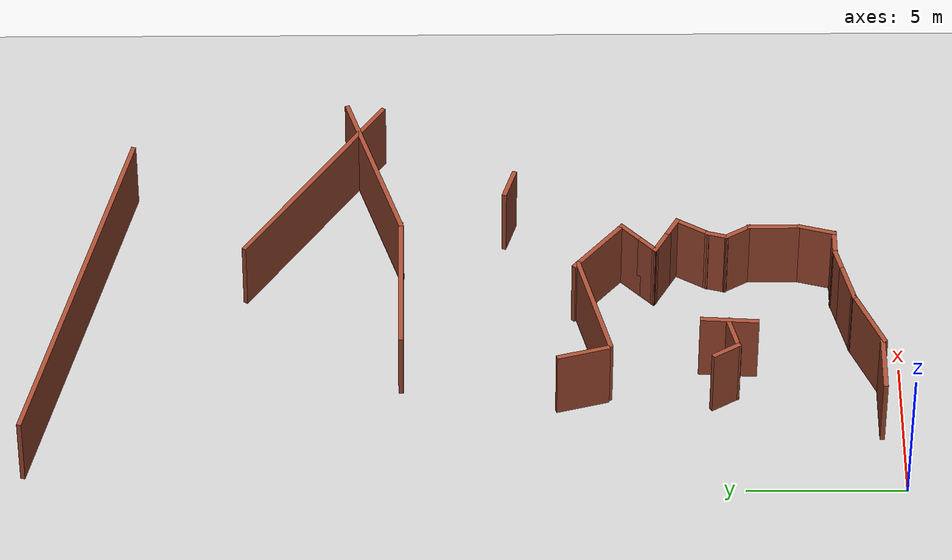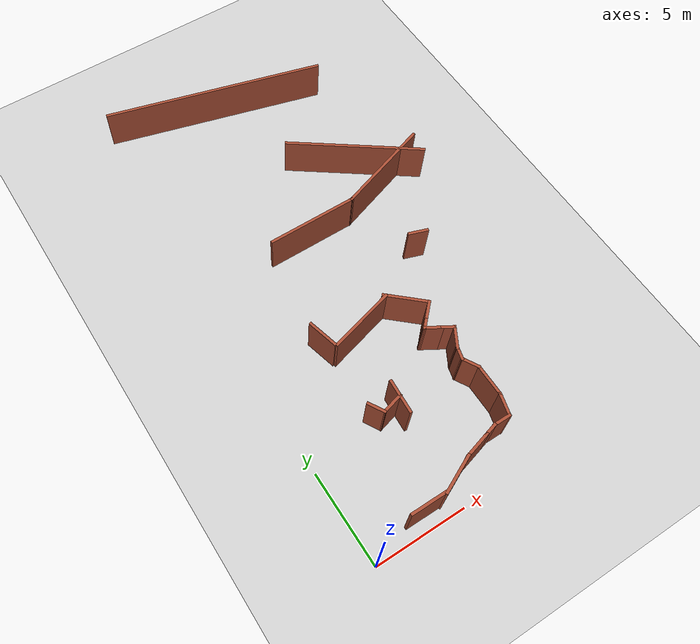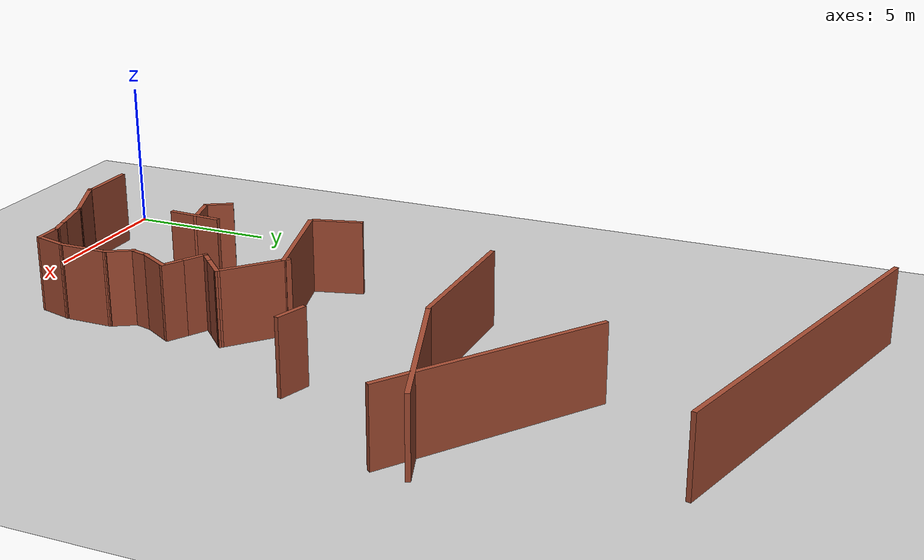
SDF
<sdf version="1.5">
 <world name="default">
  <model name="ground_plane">
   <static>1</static>
   <link name="link">
    <collision name="collision">
     <geometry><plane><normal>0 0 1</normal><size>100 100</size></plane></geometry>
     <surface><friction><ode><mu>100</mu><mu2>50</mu2></ode></friction></surface>
    </collision>
    <visual name="visual">
     <cast_shadows>0</cast_shadows>
     <geometry><plane><normal>0 0 1</normal><size>100 100</size></plane></geometry>
     <material>
      <script><uri>file://media/materials/scripts/gazebo.material</uri><name>Gazebo/Grey</name></script>
     </material>
    </visual>
   </link>
  </model>
  <model name="Untitled1111">
   <link name="Wall_109">
    <pose>9.25161 15.8373 0 0 0 -2.82454</pose>
    <visual name="Wall_109_Visual">
     <pose>0 0 1.25 0 -0 0</pose>
     <geometry><box><size>5.59694 0.15 2.5</size></box></geometry>
     <material>
      <script><uri>file://media/materials/scripts/gazebo.material</uri><name>Gazebo/Bricks</name></script>
      <ambient>1 1 1 1</ambient>
      <shader type="pixel"/>
     </material>
     <meta><layer>0</layer></meta>
    </visual>
    <collision name="Wall_109_Collision">
     <pose>0 0 1.25 0 -0 0</pose>
     <geometry><box><size>5.59694 0.15 2.5</size></box></geometry>
     <surface>
      <friction>
       <ode><mu>1</mu><mu2>1</mu2><fdir1>0 0 0</fdir1><slip1>0</slip1><slip2>0</slip2></ode>
       <torsional>
        <coefficient>1</coefficient>
        <patch_radius>0</patch_radius>
        <surface_radius>0</surface_radius>
        <use_patch_radius>1</use_patch_radius>
        <ode><slip>0</slip></ode>
       </torsional>
      </friction>
      <bounce><restitution_coefficient>0</restitution_coefficient><threshold>1e+06</threshold></bounce>
      <contact>
       <collide_without_contact>0</collide_without_contact>
       <collide_without_contact_bitmask>1</collide_without_contact_bitmask>
       <collide_bitmask>1</collide_bitmask>
       <ode>
        <soft_cfm>0</soft_cfm>
        <soft_erp>0.2</soft_erp>
        <kp>1e+13</kp>
        <kd>1</kd>
        <max_vel>0.01</max_vel>
        <min_depth>0</min_depth>
       </ode>
       <bullet>
        <split_impulse>1</split_impulse>
        <split_impulse_penetration_threshold>-0.01</split_impulse_penetration_threshold>
        <soft_cfm>0</soft_cfm>
        <soft_erp>0.2</soft_erp>
        <kp>1e+13</kp>
        <kd>1</kd>
       </bullet>
      </contact>
     </surface>
    </collision>
   </link>
   <link name="Wall_110">
    <pose>4.23888 14.9882 0 0 -0 3.14159</pose>
    <visual name="Wall_110_Visual">
     <pose>0 0 1.25 0 -0 0</pose>
     <geometry><box><size>5 0.15 2.5</size></box></geometry>
     <material>
      <script><uri>file://media/materials/scripts/gazebo.material</uri><name>Gazebo/Bricks</name></script>
      <ambient>1 1 1 1</ambient>
      <shader type="pixel"/>
     </material>
     <meta><layer>0</layer></meta>
    </visual>
    <collision name="Wall_110_Collision">
     <pose>0 0 1.25 0 -0 0</pose>
     <geometry><box><size>5 0.15 2.5</size></box></geometry>
     <surface>
      <friction>
       <ode><mu>1</mu><mu2>1</mu2><fdir1>0 0 0</fdir1><slip1>0</slip1><slip2>0</slip2></ode>
       <torsional>
        <coefficient>1</coefficient>
        <patch_radius>0</patch_radius>
        <surface_radius>0</surface_radius>
        <use_patch_radius>1</use_patch_radius>
        <ode><slip>0</slip></ode>
       </torsional>
      </friction>
      <bounce><restitution_coefficient>0</restitution_coefficient><threshold>1e+06</threshold></bounce>
      <contact>
       <collide_without_contact>0</collide_without_contact>
       <collide_without_contact_bitmask>1</collide_without_contact_bitmask>
       <collide_bitmask>1</collide_bitmask>
       <ode>
        <soft_cfm>0</soft_cfm>
        <soft_erp>0.2</soft_erp>
        <kp>1e+13</kp>
        <kd>1</kd>
        <max_vel>0.01</max_vel>
        <min_depth>0</min_depth>
       </ode>
       <bullet>
        <split_impulse>1</split_impulse>
        <split_impulse_penetration_threshold>-0.01</split_impulse_penetration_threshold>
        <soft_cfm>0</soft_cfm>
        <soft_erp>0.2</soft_erp>
        <kp>1e+13</kp>
        <kd>1</kd>
       </bullet>
      </contact>
     </surface>
    </collision>
   </link>
   <link name="Wall_162">
    <pose>4.1854 25.104 0 0 0 -0.261799</pose>
    <visual name="Wall_162_Visual">
     <pose>0 0 1.25 0 -0 0</pose>
     <geometry><box><size>12.25 0.15 2.5</size></box></geometry>
     <material>
      <script><uri>file://media/materials/scripts/gazebo.material</uri><name>Gazebo/Bricks</name></script>
      <ambient>1 1 1 1</ambient>
      <shader type="pixel"/>
     </material>
     <meta><layer>0</layer></meta>
    </visual>
    <collision name="Wall_162_Collision">
     <pose>0 0 1.25 0 -0 0</pose>
     <geometry><box><size>12.25 0.15 2.5</size></box></geometry>
     <surface>
      <friction>
       <ode><mu>1</mu><mu2>1</mu2><fdir1>0 0 0</fdir1><slip1>0</slip1><slip2>0</slip2></ode>
       <torsional>
        <coefficient>1</coefficient>
        <patch_radius>0</patch_radius>
        <surface_radius>0</surface_radius>
        <use_patch_radius>1</use_patch_radius>
        <ode><slip>0</slip></ode>
       </torsional>
      </friction>
      <bounce><restitution_coefficient>0</restitution_coefficient><threshold>1e+06</threshold></bounce>
      <contact>
       <collide_without_contact>0</collide_without_contact>
       <collide_without_contact_bitmask>1</collide_without_contact_bitmask>
       <collide_bitmask>1</collide_bitmask>
       <ode>
        <soft_cfm>0</soft_cfm>
        <soft_erp>0.2</soft_erp>
        <kp>1e+13</kp>
        <kd>1</kd>
        <max_vel>0.01</max_vel>
        <min_depth>0</min_depth>
       </ode>
       <bullet>
        <split_impulse>1</split_impulse>
        <split_impulse_penetration_threshold>-0.01</split_impulse_penetration_threshold>
        <soft_cfm>0</soft_cfm>
        <soft_erp>0.2</soft_erp>
        <kp>1e+13</kp>
        <kd>1</kd>
       </bullet>
      </contact>
     </surface>
    </collision>
   </link>
   <link name="Wall_17">
    <pose>1.24322 4.87944 0 0 0 -1.0472</pose>
    <visual name="Wall_17_Visual">
     <pose>0 0 1.25 0 -0 0</pose>
     <geometry><box><size>1 0.15 2.5</size></box></geometry>
     <material>
      <script><uri>file://media/materials/scripts/gazebo.material</uri><name>Gazebo/Bricks</name></script>
      <ambient>1 1 1 1</ambient>
      <shader type="pixel"/>
     </material>
     <meta><layer>0</layer></meta>
    </visual>
    <collision name="Wall_17_Collision">
     <pose>0 0 1.25 0 -0 0</pose>
     <geometry><box><size>1 0.15 2.5</size></box></geometry>
     <surface>
      <friction>
       <ode><mu>1</mu><mu2>1</mu2><fdir1>0 0 0</fdir1><slip1>0</slip1><slip2>0</slip2></ode>
       <torsional>
        <coefficient>1</coefficient>
        <patch_radius>0</patch_radius>
        <surface_radius>0</surface_radius>
        <use_patch_radius>1</use_patch_radius>
        <ode><slip>0</slip></ode>
       </torsional>
      </friction>
      <bounce><restitution_coefficient>0</restitution_coefficient><threshold>1e+06</threshold></bounce>
      <contact>
       <collide_without_contact>0</collide_without_contact>
       <collide_without_contact_bitmask>1</collide_without_contact_bitmask>
       <collide_bitmask>1</collide_bitmask>
       <ode>
        <soft_cfm>0</soft_cfm>
        <soft_erp>0.2</soft_erp>
        <kp>1e+13</kp>
        <kd>1</kd>
        <max_vel>0.01</max_vel>
        <min_depth>0</min_depth>
       </ode>
       <bullet>
        <split_impulse>1</split_impulse>
        <split_impulse_penetration_threshold>-0.01</split_impulse_penetration_threshold>
        <soft_cfm>0</soft_cfm>
        <soft_erp>0.2</soft_erp>
        <kp>1e+13</kp>
        <kd>1</kd>
       </bullet>
      </contact>
     </surface>
    </collision>
   </link>
   <link name="Wall_18">
    <pose>1.98698 4.65373 0 0 -0 0.261799</pose>
    <visual name="Wall_18_Visual">
     <pose>0 0 1.25 0 -0 0</pose>
     <geometry><box><size>1.25 0.15 2.5</size></box></geometry>
     <material>
      <script><uri>file://media/materials/scripts/gazebo.material</uri><name>Gazebo/Bricks</name></script>
      <ambient>1 1 1 1</ambient>
      <shader type="pixel"/>
     </material>
     <meta><layer>0</layer></meta>
    </visual>
    <collision name="Wall_18_Collision">
     <pose>0 0 1.25 0 -0 0</pose>
     <geometry><box><size>1.25 0.15 2.5</size></box></geometry>
     <surface>
      <friction>
       <ode><mu>1</mu><mu2>1</mu2><fdir1>0 0 0</fdir1><slip1>0</slip1><slip2>0</slip2></ode>
       <torsional>
        <coefficient>1</coefficient>
        <patch_radius>0</patch_radius>
        <surface_radius>0</surface_radius>
        <use_patch_radius>1</use_patch_radius>
        <ode><slip>0</slip></ode>
       </torsional>
      </friction>
      <bounce><restitution_coefficient>0</restitution_coefficient><threshold>1e+06</threshold></bounce>
      <contact>
       <collide_without_contact>0</collide_without_contact>
       <collide_without_contact_bitmask>1</collide_without_contact_bitmask>
       <collide_bitmask>1</collide_bitmask>
       <ode>
        <soft_cfm>0</soft_cfm>
        <soft_erp>0.2</soft_erp>
        <kp>1e+13</kp>
        <kd>1</kd>
        <max_vel>0.01</max_vel>
        <min_depth>0</min_depth>
       </ode>
       <bullet>
        <split_impulse>1</split_impulse>
        <split_impulse_penetration_threshold>-0.01</split_impulse_penetration_threshold>
        <soft_cfm>0</soft_cfm>
        <soft_erp>0.2</soft_erp>
        <kp>1e+13</kp>
        <kd>1</kd>
       </bullet>
      </contact>
     </surface>
    </collision>
   </link>
   <link name="Wall_183">
    <pose>8.70454 17.7279 0 0 0 -0.618316</pose>
    <visual name="Wall_183_Visual">
     <pose>0 0 1.25 0 -0 0</pose>
     <geometry><box><size>7.56963 0.15 2.5</size></box></geometry>
     <material>
      <script><uri>file://media/materials/scripts/gazebo.material</uri><name>Gazebo/Bricks</name></script>
      <ambient>1 1 1 1</ambient>
      <shader type="pixel"/>
     </material>
     <meta><layer>0</layer></meta>
    </visual>
    <collision name="Wall_183_Collision">
     <pose>0 0 1.25 0 -0 0</pose>
     <geometry><box><size>7.56963 0.15 2.5</size></box></geometry>
     <surface>
      <friction>
       <ode><mu>1</mu><mu2>1</mu2><fdir1>0 0 0</fdir1><slip1>0</slip1><slip2>0</slip2></ode>
       <torsional>
        <coefficient>1</coefficient>
        <patch_radius>0</patch_radius>
        <surface_radius>0</surface_radius>
        <use_patch_radius>1</use_patch_radius>
        <ode><slip>0</slip></ode>
       </torsional>
      </friction>
      <bounce><restitution_coefficient>0</restitution_coefficient><threshold>1e+06</threshold></bounce>
      <contact>
       <collide_without_contact>0</collide_without_contact>
       <collide_without_contact_bitmask>1</collide_without_contact_bitmask>
       <collide_bitmask>1</collide_bitmask>
       <ode>
        <soft_cfm>0</soft_cfm>
        <soft_erp>0.2</soft_erp>
        <kp>1e+13</kp>
        <kd>1</kd>
        <max_vel>0.01</max_vel>
        <min_depth>0</min_depth>
       </ode>
       <bullet>
        <split_impulse>1</split_impulse>
        <split_impulse_penetration_threshold>-0.01</split_impulse_penetration_threshold>
        <soft_cfm>0</soft_cfm>
        <soft_erp>0.2</soft_erp>
        <kp>1e+13</kp>
        <kd>1</kd>
       </bullet>
      </contact>
     </surface>
    </collision>
   </link>
   <link name="Wall_21">
    <pose>2.50556 4.7383 0 0 0 -1.63384</pose>
    <visual name="Wall_21_Visual">
     <pose>0 0 1.25 0 -0 0</pose>
     <geometry><box><size>1.84484 0.15 2.5</size></box></geometry>
     <material>
      <script><uri>file://media/materials/scripts/gazebo.material</uri><name>Gazebo/Bricks</name></script>
      <ambient>1 1 1 1</ambient>
      <shader type="pixel"/>
     </material>
     <meta><layer>0</layer></meta>
    </visual>
    <collision name="Wall_21_Collision">
     <pose>0 0 1.25 0 -0 0</pose>
     <geometry><box><size>1.84484 0.15 2.5</size></box></geometry>
     <surface>
      <friction>
       <ode><mu>1</mu><mu2>1</mu2><fdir1>0 0 0</fdir1><slip1>0</slip1><slip2>0</slip2></ode>
       <torsional>
        <coefficient>1</coefficient>
        <patch_radius>0</patch_radius>
        <surface_radius>0</surface_radius>
        <use_patch_radius>1</use_patch_radius>
        <ode><slip>0</slip></ode>
       </torsional>
      </friction>
      <bounce><restitution_coefficient>0</restitution_coefficient><threshold>1e+06</threshold></bounce>
      <contact>
       <collide_without_contact>0</collide_without_contact>
       <collide_without_contact_bitmask>1</collide_without_contact_bitmask>
       <collide_bitmask>1</collide_bitmask>
       <ode>
        <soft_cfm>0</soft_cfm>
        <soft_erp>0.2</soft_erp>
        <kp>1e+13</kp>
        <kd>1</kd>
        <max_vel>0.01</max_vel>
        <min_depth>0</min_depth>
       </ode>
       <bullet>
        <split_impulse>1</split_impulse>
        <split_impulse_penetration_threshold>-0.01</split_impulse_penetration_threshold>
        <soft_cfm>0</soft_cfm>
        <soft_erp>0.2</soft_erp>
        <kp>1e+13</kp>
        <kd>1</kd>
       </bullet>
      </contact>
     </surface>
    </collision>
   </link>
   <link name="Wall_35">
    <pose>0.702466 0.01763 0 0 -0 0</pose>
    <visual name="Wall_35_Visual">
     <pose>0 0 1.25 0 -0 0</pose>
     <geometry><box><size>2 0.15 2.5</size></box></geometry>
     <material>
      <script><uri>file://media/materials/scripts/gazebo.material</uri><name>Gazebo/Bricks</name></script>
      <ambient>1 1 1 1</ambient>
      <shader type="pixel"/>
     </material>
     <meta><layer>0</layer></meta>
    </visual>
    <collision name="Wall_35_Collision">
     <pose>0 0 1.25 0 -0 0</pose>
     <geometry><box><size>2 0.15 2.5</size></box></geometry>
     <surface>
      <friction>
       <ode><mu>1</mu><mu2>1</mu2><fdir1>0 0 0</fdir1><slip1>0</slip1><slip2>0</slip2></ode>
       <torsional>
        <coefficient>1</coefficient>
        <patch_radius>0</patch_radius>
        <surface_radius>0</surface_radius>
        <use_patch_radius>1</use_patch_radius>
        <ode><slip>0</slip></ode>
       </torsional>
      </friction>
      <bounce><restitution_coefficient>0</restitution_coefficient><threshold>1e+06</threshold></bounce>
      <contact>
       <collide_without_contact>0</collide_without_contact>
       <collide_without_contact_bitmask>1</collide_without_contact_bitmask>
       <collide_bitmask>1</collide_bitmask>
       <ode>
        <soft_cfm>0</soft_cfm>
        <soft_erp>0.2</soft_erp>
        <kp>1e+13</kp>
        <kd>1</kd>
        <max_vel>0.01</max_vel>
        <min_depth>0</min_depth>
       </ode>
       <bullet>
        <split_impulse>1</split_impulse>
        <split_impulse_penetration_threshold>-0.01</split_impulse_penetration_threshold>
        <soft_cfm>0</soft_cfm>
        <soft_erp>0.2</soft_erp>
        <kp>1e+13</kp>
        <kd>1</kd>
       </bullet>
      </contact>
     </surface>
    </collision>
   </link>
   <link name="Wall_36">
    <pose>2.55247 0.390033 0 0 -0 0.431231</pose>
    <visual name="Wall_36_Visual">
     <pose>0 0 1.25 0 -0 0</pose>
     <geometry><box><size>2.18643 0.15 2.5</size></box></geometry>
     <material>
      <script><uri>file://media/materials/scripts/gazebo.material</uri><name>Gazebo/Bricks</name></script>
      <ambient>1 1 1 1</ambient>
      <shader type="pixel"/>
     </material>
     <meta><layer>0</layer></meta>
    </visual>
    <collision name="Wall_36_Collision">
     <pose>0 0 1.25 0 -0 0</pose>
     <geometry><box><size>2.18643 0.15 2.5</size></box></geometry>
     <surface>
      <friction>
       <ode><mu>1</mu><mu2>1</mu2><fdir1>0 0 0</fdir1><slip1>0</slip1><slip2>0</slip2></ode>
       <torsional>
        <coefficient>1</coefficient>
        <patch_radius>0</patch_radius>
        <surface_radius>0</surface_radius>
        <use_patch_radius>1</use_patch_radius>
        <ode><slip>0</slip></ode>
       </torsional>
      </friction>
      <bounce><restitution_coefficient>0</restitution_coefficient><threshold>1e+06</threshold></bounce>
      <contact>
       <collide_without_contact>0</collide_without_contact>
       <collide_without_contact_bitmask>1</collide_without_contact_bitmask>
       <collide_bitmask>1</collide_bitmask>
       <ode>
        <soft_cfm>0</soft_cfm>
        <soft_erp>0.2</soft_erp>
        <kp>1e+13</kp>
        <kd>1</kd>
        <max_vel>0.01</max_vel>
        <min_depth>0</min_depth>
       </ode>
       <bullet>
        <split_impulse>1</split_impulse>
        <split_impulse_penetration_threshold>-0.01</split_impulse_penetration_threshold>
        <soft_cfm>0</soft_cfm>
        <soft_erp>0.2</soft_erp>
        <kp>1e+13</kp>
        <kd>1</kd>
       </bullet>
      </contact>
     </surface>
    </collision>
   </link>
   <link name="Wall_37">
    <pose>4.12947 0.990339 0 0 -0 0.261799</pose>
    <visual name="Wall_37_Visual">
     <pose>0 0 1.25 0 -0 0</pose>
     <geometry><box><size>1.5 0.15 2.5</size></box></geometry>
     <material>
      <script><uri>file://media/materials/scripts/gazebo.material</uri><name>Gazebo/Bricks</name></script>
      <ambient>1 1 1 1</ambient>
      <shader type="pixel"/>
     </material>
     <meta><layer>0</layer></meta>
    </visual>
    <collision name="Wall_37_Collision">
     <pose>0 0 1.25 0 -0 0</pose>
     <geometry><box><size>1.5 0.15 2.5</size></box></geometry>
     <surface>
      <friction>
       <ode><mu>1</mu><mu2>1</mu2><fdir1>0 0 0</fdir1><slip1>0</slip1><slip2>0</slip2></ode>
       <torsional>
        <coefficient>1</coefficient>
        <patch_radius>0</patch_radius>
        <surface_radius>0</surface_radius>
        <use_patch_radius>1</use_patch_radius>
        <ode><slip>0</slip></ode>
       </torsional>
      </friction>
      <bounce><restitution_coefficient>0</restitution_coefficient><threshold>1e+06</threshold></bounce>
      <contact>
       <collide_without_contact>0</collide_without_contact>
       <collide_without_contact_bitmask>1</collide_without_contact_bitmask>
       <collide_bitmask>1</collide_bitmask>
       <ode>
        <soft_cfm>0</soft_cfm>
        <soft_erp>0.2</soft_erp>
        <kp>1e+13</kp>
        <kd>1</kd>
        <max_vel>0.01</max_vel>
        <min_depth>0</min_depth>
       </ode>
       <bullet>
        <split_impulse>1</split_impulse>
        <split_impulse_penetration_threshold>-0.01</split_impulse_penetration_threshold>
        <soft_cfm>0</soft_cfm>
        <soft_erp>0.2</soft_erp>
        <kp>1e+13</kp>
        <kd>1</kd>
       </bullet>
      </contact>
     </surface>
    </collision>
   </link>
   <link name="Wall_38">
    <pose>5.07124 1.24269 0 0 -0 0.261799</pose>
    <visual name="Wall_38_Visual">
     <pose>0 0 1.25 0 -0 0</pose>
     <geometry><box><size>0.75 0.15 2.5</size></box></geometry>
     <material>
      <script><uri>file://media/materials/scripts/gazebo.material</uri><name>Gazebo/Bricks</name></script>
      <ambient>1 1 1 1</ambient>
      <shader type="pixel"/>
     </material>
     <meta><layer>0</layer></meta>
    </visual>
    <collision name="Wall_38_Collision">
     <pose>0 0 1.25 0 -0 0</pose>
     <geometry><box><size>0.75 0.15 2.5</size></box></geometry>
     <surface>
      <friction>
       <ode><mu>1</mu><mu2>1</mu2><fdir1>0 0 0</fdir1><slip1>0</slip1><slip2>0</slip2></ode>
       <torsional>
        <coefficient>1</coefficient>
        <patch_radius>0</patch_radius>
        <surface_radius>0</surface_radius>
        <use_patch_radius>1</use_patch_radius>
        <ode><slip>0</slip></ode>
       </torsional>
      </friction>
      <bounce><restitution_coefficient>0</restitution_coefficient><threshold>1e+06</threshold></bounce>
      <contact>
       <collide_without_contact>0</collide_without_contact>
       <collide_without_contact_bitmask>1</collide_without_contact_bitmask>
       <collide_bitmask>1</collide_bitmask>
       <ode>
        <soft_cfm>0</soft_cfm>
        <soft_erp>0.2</soft_erp>
        <kp>1e+13</kp>
        <kd>1</kd>
        <max_vel>0.01</max_vel>
        <min_depth>0</min_depth>
       </ode>
       <bullet>
        <split_impulse>1</split_impulse>
        <split_impulse_penetration_threshold>-0.01</split_impulse_penetration_threshold>
        <soft_cfm>0</soft_cfm>
        <soft_erp>0.2</soft_erp>
        <kp>1e+13</kp>
        <kd>1</kd>
       </bullet>
      </contact>
     </surface>
    </collision>
   </link>
   <link name="Wall_39">
    <pose>5.78602 1.32033 0 0 -0 0</pose>
    <visual name="Wall_39_Visual">
     <pose>0 0 1.25 0 -0 0</pose>
     <geometry><box><size>1 0.15 2.5</size></box></geometry>
     <material>
      <script><uri>file://media/materials/scripts/gazebo.material</uri><name>Gazebo/Bricks</name></script>
      <ambient>1 1 1 1</ambient>
      <shader type="pixel"/>
     </material>
     <meta><layer>0</layer></meta>
    </visual>
    <collision name="Wall_39_Collision">
     <pose>0 0 1.25 0 -0 0</pose>
     <geometry><box><size>1 0.15 2.5</size></box></geometry>
     <surface>
      <friction>
       <ode><mu>1</mu><mu2>1</mu2><fdir1>0 0 0</fdir1><slip1>0</slip1><slip2>0</slip2></ode>
       <torsional>
        <coefficient>1</coefficient>
        <patch_radius>0</patch_radius>
        <surface_radius>0</surface_radius>
        <use_patch_radius>1</use_patch_radius>
        <ode><slip>0</slip></ode>
       </torsional>
      </friction>
      <bounce><restitution_coefficient>0</restitution_coefficient><threshold>1e+06</threshold></bounce>
      <contact>
       <collide_without_contact>0</collide_without_contact>
       <collide_without_contact_bitmask>1</collide_without_contact_bitmask>
       <collide_bitmask>1</collide_bitmask>
       <ode>
        <soft_cfm>0</soft_cfm>
        <soft_erp>0.2</soft_erp>
        <kp>1e+13</kp>
        <kd>1</kd>
        <max_vel>0.01</max_vel>
        <min_depth>0</min_depth>
       </ode>
       <bullet>
        <split_impulse>1</split_impulse>
        <split_impulse_penetration_threshold>-0.01</split_impulse_penetration_threshold>
        <soft_cfm>0</soft_cfm>
        <soft_erp>0.2</soft_erp>
        <kp>1e+13</kp>
        <kd>1</kd>
       </bullet>
      </contact>
     </surface>
    </collision>
   </link>
   <link name="Wall_40">
    <pose>6.35337 1.85159 0 0 -0 1.309</pose>
    <visual name="Wall_40_Visual">
     <pose>0 0 1.25 0 -0 0</pose>
     <geometry><box><size>1.25 0.15 2.5</size></box></geometry>
     <material>
      <script><uri>file://media/materials/scripts/gazebo.material</uri><name>Gazebo/Bricks</name></script>
      <ambient>1 1 1 1</ambient>
      <shader type="pixel"/>
     </material>
     <meta><layer>0</layer></meta>
    </visual>
    <collision name="Wall_40_Collision">
     <pose>0 0 1.25 0 -0 0</pose>
     <geometry><box><size>1.25 0.15 2.5</size></box></geometry>
     <surface>
      <friction>
       <ode><mu>1</mu><mu2>1</mu2><fdir1>0 0 0</fdir1><slip1>0</slip1><slip2>0</slip2></ode>
       <torsional>
        <coefficient>1</coefficient>
        <patch_radius>0</patch_radius>
        <surface_radius>0</surface_radius>
        <use_patch_radius>1</use_patch_radius>
        <ode><slip>0</slip></ode>
       </torsional>
      </friction>
      <bounce><restitution_coefficient>0</restitution_coefficient><threshold>1e+06</threshold></bounce>
      <contact>
       <collide_without_contact>0</collide_without_contact>
       <collide_without_contact_bitmask>1</collide_without_contact_bitmask>
       <collide_bitmask>1</collide_bitmask>
       <ode>
        <soft_cfm>0</soft_cfm>
        <soft_erp>0.2</soft_erp>
        <kp>1e+13</kp>
        <kd>1</kd>
        <max_vel>0.01</max_vel>
        <min_depth>0</min_depth>
       </ode>
       <bullet>
        <split_impulse>1</split_impulse>
        <split_impulse_penetration_threshold>-0.01</split_impulse_penetration_threshold>
        <soft_cfm>0</soft_cfm>
        <soft_erp>0.2</soft_erp>
        <kp>1e+13</kp>
        <kd>1</kd>
       </bullet>
      </contact>
     </surface>
    </collision>
   </link>
   <link name="Wall_41">
    <pose>6.49572 3.18285 0 0 -0 1.5708</pose>
    <visual name="Wall_41_Visual">
     <pose>0 0 1.25 0 -0 0</pose>
     <geometry><box><size>1.75 0.15 2.5</size></box></geometry>
     <material>
      <script><uri>file://media/materials/scripts/gazebo.material</uri><name>Gazebo/Bricks</name></script>
      <ambient>1 1 1 1</ambient>
      <shader type="pixel"/>
     </material>
     <meta><layer>0</layer></meta>
    </visual>
    <collision name="Wall_41_Collision">
     <pose>0 0 1.25 0 -0 0</pose>
     <geometry><box><size>1.75 0.15 2.5</size></box></geometry>
     <surface>
      <friction>
       <ode><mu>1</mu><mu2>1</mu2><fdir1>0 0 0</fdir1><slip1>0</slip1><slip2>0</slip2></ode>
       <torsional>
        <coefficient>1</coefficient>
        <patch_radius>0</patch_radius>
        <surface_radius>0</surface_radius>
        <use_patch_radius>1</use_patch_radius>
        <ode><slip>0</slip></ode>
       </torsional>
      </friction>
      <bounce><restitution_coefficient>0</restitution_coefficient><threshold>1e+06</threshold></bounce>
      <contact>
       <collide_without_contact>0</collide_without_contact>
       <collide_without_contact_bitmask>1</collide_without_contact_bitmask>
       <collide_bitmask>1</collide_bitmask>
       <ode>
        <soft_cfm>0</soft_cfm>
        <soft_erp>0.2</soft_erp>
        <kp>1e+13</kp>
        <kd>1</kd>
        <max_vel>0.01</max_vel>
        <min_depth>0</min_depth>
       </ode>
       <bullet>
        <split_impulse>1</split_impulse>
        <split_impulse_penetration_threshold>-0.01</split_impulse_penetration_threshold>
        <soft_cfm>0</soft_cfm>
        <soft_erp>0.2</soft_erp>
        <kp>1e+13</kp>
        <kd>1</kd>
       </bullet>
      </contact>
     </surface>
    </collision>
   </link>
   <link name="Wall_42">
    <pose>6.28322 4.35091 0 0 -0 2.0944</pose>
    <visual name="Wall_42_Visual">
     <pose>0 0 1.25 0 -0 0</pose>
     <geometry><box><size>1 0.15 2.5</size></box></geometry>
     <material>
      <script><uri>file://media/materials/scripts/gazebo.material</uri><name>Gazebo/Bricks</name></script>
      <ambient>1 1 1 1</ambient>
      <shader type="pixel"/>
     </material>
     <meta><layer>0</layer></meta>
    </visual>
    <collision name="Wall_42_Collision">
     <pose>0 0 1.25 0 -0 0</pose>
     <geometry><box><size>1 0.15 2.5</size></box></geometry>
     <surface>
      <friction>
       <ode><mu>1</mu><mu2>1</mu2><fdir1>0 0 0</fdir1><slip1>0</slip1><slip2>0</slip2></ode>
       <torsional>
        <coefficient>1</coefficient>
        <patch_radius>0</patch_radius>
        <surface_radius>0</surface_radius>
        <use_patch_radius>1</use_patch_radius>
        <ode><slip>0</slip></ode>
       </torsional>
      </friction>
      <bounce><restitution_coefficient>0</restitution_coefficient><threshold>1e+06</threshold></bounce>
      <contact>
       <collide_without_contact>0</collide_without_contact>
       <collide_without_contact_bitmask>1</collide_without_contact_bitmask>
       <collide_bitmask>1</collide_bitmask>
       <ode>
        <soft_cfm>0</soft_cfm>
        <soft_erp>0.2</soft_erp>
        <kp>1e+13</kp>
        <kd>1</kd>
        <max_vel>0.01</max_vel>
        <min_depth>0</min_depth>
       </ode>
       <bullet>
        <split_impulse>1</split_impulse>
        <split_impulse_penetration_threshold>-0.01</split_impulse_penetration_threshold>
        <soft_cfm>0</soft_cfm>
        <soft_erp>0.2</soft_erp>
        <kp>1e+13</kp>
        <kd>1</kd>
       </bullet>
      </contact>
     </surface>
    </collision>
   </link>
   <link name="Wall_43">
    <pose>6.14837 5.00875 0 0 -0 1.309</pose>
    <visual name="Wall_43_Visual">
     <pose>0 0 1.25 0 -0 0</pose>
     <geometry><box><size>0.75 0.15 2.5</size></box></geometry>
     <material>
      <script><uri>file://media/materials/scripts/gazebo.material</uri><name>Gazebo/Bricks</name></script>
      <ambient>1 1 1 1</ambient>
      <shader type="pixel"/>
     </material>
     <meta><layer>0</layer></meta>
    </visual>
    <collision name="Wall_43_Collision">
     <pose>0 0 1.25 0 -0 0</pose>
     <geometry><box><size>0.75 0.15 2.5</size></box></geometry>
     <surface>
      <friction>
       <ode><mu>1</mu><mu2>1</mu2><fdir1>0 0 0</fdir1><slip1>0</slip1><slip2>0</slip2></ode>
       <torsional>
        <coefficient>1</coefficient>
        <patch_radius>0</patch_radius>
        <surface_radius>0</surface_radius>
        <use_patch_radius>1</use_patch_radius>
        <ode><slip>0</slip></ode>
       </torsional>
      </friction>
      <bounce><restitution_coefficient>0</restitution_coefficient><threshold>1e+06</threshold></bounce>
      <contact>
       <collide_without_contact>0</collide_without_contact>
       <collide_without_contact_bitmask>1</collide_without_contact_bitmask>
       <collide_bitmask>1</collide_bitmask>
       <ode>
        <soft_cfm>0</soft_cfm>
        <soft_erp>0.2</soft_erp>
        <kp>1e+13</kp>
        <kd>1</kd>
        <max_vel>0.01</max_vel>
        <min_depth>0</min_depth>
       </ode>
       <bullet>
        <split_impulse>1</split_impulse>
        <split_impulse_penetration_threshold>-0.01</split_impulse_penetration_threshold>
        <soft_cfm>0</soft_cfm>
        <soft_erp>0.2</soft_erp>
        <kp>1e+13</kp>
        <kd>1</kd>
       </bullet>
      </contact>
     </surface>
    </collision>
   </link>
   <link name="Wall_44">
    <pose>6.50101 5.77484 0 0 -0 1.0472</pose>
    <visual name="Wall_44_Visual">
     <pose>0 0 1.25 0 -0 0</pose>
     <geometry><box><size>1.25 0.15 2.5</size></box></geometry>
     <material>
      <script><uri>file://media/materials/scripts/gazebo.material</uri><name>Gazebo/Bricks</name></script>
      <ambient>1 1 1 1</ambient>
      <shader type="pixel"/>
     </material>
     <meta><layer>0</layer></meta>
    </visual>
    <collision name="Wall_44_Collision">
     <pose>0 0 1.25 0 -0 0</pose>
     <geometry><box><size>1.25 0.15 2.5</size></box></geometry>
     <surface>
      <friction>
       <ode><mu>1</mu><mu2>1</mu2><fdir1>0 0 0</fdir1><slip1>0</slip1><slip2>0</slip2></ode>
       <torsional>
        <coefficient>1</coefficient>
        <patch_radius>0</patch_radius>
        <surface_radius>0</surface_radius>
        <use_patch_radius>1</use_patch_radius>
        <ode><slip>0</slip></ode>
       </torsional>
      </friction>
      <bounce><restitution_coefficient>0</restitution_coefficient><threshold>1e+06</threshold></bounce>
      <contact>
       <collide_without_contact>0</collide_without_contact>
       <collide_without_contact_bitmask>1</collide_without_contact_bitmask>
       <collide_bitmask>1</collide_bitmask>
       <ode>
        <soft_cfm>0</soft_cfm>
        <soft_erp>0.2</soft_erp>
        <kp>1e+13</kp>
        <kd>1</kd>
        <max_vel>0.01</max_vel>
        <min_depth>0</min_depth>
       </ode>
       <bullet>
        <split_impulse>1</split_impulse>
        <split_impulse_penetration_threshold>-0.01</split_impulse_penetration_threshold>
        <soft_cfm>0</soft_cfm>
        <soft_erp>0.2</soft_erp>
        <kp>1e+13</kp>
        <kd>1</kd>
       </bullet>
      </contact>
     </surface>
    </collision>
   </link>
   <link name="Wall_45">
    <pose>6.51621 6.40116 0 0 -0 2.61799</pose>
    <visual name="Wall_45_Visual">
     <pose>0 0 1.25 0 -0 0</pose>
     <geometry><box><size>0.75 0.15 2.5</size></box></geometry>
     <material>
      <script><uri>file://media/materials/scripts/gazebo.material</uri><name>Gazebo/Bricks</name></script>
      <ambient>1 1 1 1</ambient>
      <shader type="pixel"/>
     </material>
     <meta><layer>0</layer></meta>
    </visual>
    <collision name="Wall_45_Collision">
     <pose>0 0 1.25 0 -0 0</pose>
     <geometry><box><size>0.75 0.15 2.5</size></box></geometry>
     <surface>
      <friction>
       <ode><mu>1</mu><mu2>1</mu2><fdir1>0 0 0</fdir1><slip1>0</slip1><slip2>0</slip2></ode>
       <torsional>
        <coefficient>1</coefficient>
        <patch_radius>0</patch_radius>
        <surface_radius>0</surface_radius>
        <use_patch_radius>1</use_patch_radius>
        <ode><slip>0</slip></ode>
       </torsional>
      </friction>
      <bounce><restitution_coefficient>0</restitution_coefficient><threshold>1e+06</threshold></bounce>
      <contact>
       <collide_without_contact>0</collide_without_contact>
       <collide_without_contact_bitmask>1</collide_without_contact_bitmask>
       <collide_bitmask>1</collide_bitmask>
       <ode>
        <soft_cfm>0</soft_cfm>
        <soft_erp>0.2</soft_erp>
        <kp>1e+13</kp>
        <kd>1</kd>
        <max_vel>0.01</max_vel>
        <min_depth>0</min_depth>
       </ode>
       <bullet>
        <split_impulse>1</split_impulse>
        <split_impulse_penetration_threshold>-0.01</split_impulse_penetration_threshold>
        <soft_cfm>0</soft_cfm>
        <soft_erp>0.2</soft_erp>
        <kp>1e+13</kp>
        <kd>1</kd>
       </bullet>
      </contact>
     </surface>
    </collision>
   </link>
   <link name="Wall_46">
    <pose>5.88834 6.76366 0 0 -0 2.61799</pose>
    <visual name="Wall_46_Visual">
     <pose>0 0 1.25 0 -0 0</pose>
     <geometry><box><size>1 0.15 2.5</size></box></geometry>
     <material>
      <script><uri>file://media/materials/scripts/gazebo.material</uri><name>Gazebo/Bricks</name></script>
      <ambient>1 1 1 1</ambient>
      <shader type="pixel"/>
     </material>
     <meta><layer>0</layer></meta>
    </visual>
    <collision name="Wall_46_Collision">
     <pose>0 0 1.25 0 -0 0</pose>
     <geometry><box><size>1 0.15 2.5</size></box></geometry>
     <surface>
      <friction>
       <ode><mu>1</mu><mu2>1</mu2><fdir1>0 0 0</fdir1><slip1>0</slip1><slip2>0</slip2></ode>
       <torsional>
        <coefficient>1</coefficient>
        <patch_radius>0</patch_radius>
        <surface_radius>0</surface_radius>
        <use_patch_radius>1</use_patch_radius>
        <ode><slip>0</slip></ode>
       </torsional>
      </friction>
      <bounce><restitution_coefficient>0</restitution_coefficient><threshold>1e+06</threshold></bounce>
      <contact>
       <collide_without_contact>0</collide_without_contact>
       <collide_without_contact_bitmask>1</collide_without_contact_bitmask>
       <collide_bitmask>1</collide_bitmask>
       <ode>
        <soft_cfm>0</soft_cfm>
        <soft_erp>0.2</soft_erp>
        <kp>1e+13</kp>
        <kd>1</kd>
        <max_vel>0.01</max_vel>
        <min_depth>0</min_depth>
       </ode>
       <bullet>
        <split_impulse>1</split_impulse>
        <split_impulse_penetration_threshold>-0.01</split_impulse_penetration_threshold>
        <soft_cfm>0</soft_cfm>
        <soft_erp>0.2</soft_erp>
        <kp>1e+13</kp>
        <kd>1</kd>
       </bullet>
      </contact>
     </surface>
    </collision>
   </link>
   <link name="Wall_47">
    <pose>5.73241 7.18829 0 0 -0 0.785398</pose>
    <visual name="Wall_47_Visual">
     <pose>0 0 1.25 0 -0 0</pose>
     <geometry><box><size>0.75 0.15 2.5</size></box></geometry>
     <material>
      <script><uri>file://media/materials/scripts/gazebo.material</uri><name>Gazebo/Bricks</name></script>
      <ambient>1 1 1 1</ambient>
      <shader type="pixel"/>
     </material>
     <meta><layer>0</layer></meta>
    </visual>
    <collision name="Wall_47_Collision">
     <pose>0 0 1.25 0 -0 0</pose>
     <geometry><box><size>0.75 0.15 2.5</size></box></geometry>
     <surface>
      <friction>
       <ode><mu>1</mu><mu2>1</mu2><fdir1>0 0 0</fdir1><slip1>0</slip1><slip2>0</slip2></ode>
       <torsional>
        <coefficient>1</coefficient>
        <patch_radius>0</patch_radius>
        <surface_radius>0</surface_radius>
        <use_patch_radius>1</use_patch_radius>
        <ode><slip>0</slip></ode>
       </torsional>
      </friction>
      <bounce><restitution_coefficient>0</restitution_coefficient><threshold>1e+06</threshold></bounce>
      <contact>
       <collide_without_contact>0</collide_without_contact>
       <collide_without_contact_bitmask>1</collide_without_contact_bitmask>
       <collide_bitmask>1</collide_bitmask>
       <ode>
        <soft_cfm>0</soft_cfm>
        <soft_erp>0.2</soft_erp>
        <kp>1e+13</kp>
        <kd>1</kd>
        <max_vel>0.01</max_vel>
        <min_depth>0</min_depth>
       </ode>
       <bullet>
        <split_impulse>1</split_impulse>
        <split_impulse_penetration_threshold>-0.01</split_impulse_penetration_threshold>
        <soft_cfm>0</soft_cfm>
        <soft_erp>0.2</soft_erp>
        <kp>1e+13</kp>
        <kd>1</kd>
       </bullet>
      </contact>
     </surface>
    </collision>
   </link>
   <link name="Wall_48">
    <pose>6.24506 7.70094 0 0 -0 0.785398</pose>
    <visual name="Wall_48_Visual">
     <pose>0 0 1.25 0 -0 0</pose>
     <geometry><box><size>1 0.15 2.5</size></box></geometry>
     <material>
      <script><uri>file://media/materials/scripts/gazebo.material</uri><name>Gazebo/Bricks</name></script>
      <ambient>1 1 1 1</ambient>
      <shader type="pixel"/>
     </material>
     <meta><layer>0</layer></meta>
    </visual>
    <collision name="Wall_48_Collision">
     <pose>0 0 1.25 0 -0 0</pose>
     <geometry><box><size>1 0.15 2.5</size></box></geometry>
     <surface>
      <friction>
       <ode><mu>1</mu><mu2>1</mu2><fdir1>0 0 0</fdir1><slip1>0</slip1><slip2>0</slip2></ode>
       <torsional>
        <coefficient>1</coefficient>
        <patch_radius>0</patch_radius>
        <surface_radius>0</surface_radius>
        <use_patch_radius>1</use_patch_radius>
        <ode><slip>0</slip></ode>
       </torsional>
      </friction>
      <bounce><restitution_coefficient>0</restitution_coefficient><threshold>1e+06</threshold></bounce>
      <contact>
       <collide_without_contact>0</collide_without_contact>
       <collide_without_contact_bitmask>1</collide_without_contact_bitmask>
       <collide_bitmask>1</collide_bitmask>
       <ode>
        <soft_cfm>0</soft_cfm>
        <soft_erp>0.2</soft_erp>
        <kp>1e+13</kp>
        <kd>1</kd>
        <max_vel>0.01</max_vel>
        <min_depth>0</min_depth>
       </ode>
       <bullet>
        <split_impulse>1</split_impulse>
        <split_impulse_penetration_threshold>-0.01</split_impulse_penetration_threshold>
        <soft_cfm>0</soft_cfm>
        <soft_erp>0.2</soft_erp>
        <kp>1e+13</kp>
        <kd>1</kd>
       </bullet>
      </contact>
     </surface>
    </collision>
   </link>
   <link name="Wall_49">
    <pose>5.69862 8.75263 0 0 -0 2.41606</pose>
    <visual name="Wall_49_Visual">
     <pose>0 0 1.25 0 -0 0</pose>
     <geometry><box><size>2.41415 0.15 2.5</size></box></geometry>
     <material>
      <script><uri>file://media/materials/scripts/gazebo.material</uri><name>Gazebo/Bricks</name></script>
      <ambient>1 1 1 1</ambient>
      <shader type="pixel"/>
     </material>
     <meta><layer>0</layer></meta>
    </visual>
    <collision name="Wall_49_Collision">
     <pose>0 0 1.25 0 -0 0</pose>
     <geometry><box><size>2.41415 0.15 2.5</size></box></geometry>
     <surface>
      <friction>
       <ode><mu>1</mu><mu2>1</mu2><fdir1>0 0 0</fdir1><slip1>0</slip1><slip2>0</slip2></ode>
       <torsional>
        <coefficient>1</coefficient>
        <patch_radius>0</patch_radius>
        <surface_radius>0</surface_radius>
        <use_patch_radius>1</use_patch_radius>
        <ode><slip>0</slip></ode>
       </torsional>
      </friction>
      <bounce><restitution_coefficient>0</restitution_coefficient><threshold>1e+06</threshold></bounce>
      <contact>
       <collide_without_contact>0</collide_without_contact>
       <collide_without_contact_bitmask>1</collide_without_contact_bitmask>
       <collide_bitmask>1</collide_bitmask>
       <ode>
        <soft_cfm>0</soft_cfm>
        <soft_erp>0.2</soft_erp>
        <kp>1e+13</kp>
        <kd>1</kd>
        <max_vel>0.01</max_vel>
        <min_depth>0</min_depth>
       </ode>
       <bullet>
        <split_impulse>1</split_impulse>
        <split_impulse_penetration_threshold>-0.01</split_impulse_penetration_threshold>
        <soft_cfm>0</soft_cfm>
        <soft_erp>0.2</soft_erp>
        <kp>1e+13</kp>
        <kd>1</kd>
       </bullet>
      </contact>
     </surface>
    </collision>
   </link>
   <link name="Wall_50">
    <pose>3.20605 8.94488 0 0 0 -2.87979</pose>
    <visual name="Wall_50_Visual">
     <pose>0 0 1.25 0 -0 0</pose>
     <geometry><box><size>3.75 0.15 2.5</size></box></geometry>
     <material>
      <script><uri>file://media/materials/scripts/gazebo.material</uri><name>Gazebo/Bricks</name></script>
      <ambient>1 1 1 1</ambient>
      <shader type="pixel"/>
     </material>
     <meta><layer>0</layer></meta>
    </visual>
    <collision name="Wall_50_Collision">
     <pose>0 0 1.25 0 -0 0</pose>
     <geometry><box><size>3.75 0.15 2.5</size></box></geometry>
     <surface>
      <friction>
       <ode><mu>1</mu><mu2>1</mu2><fdir1>0 0 0</fdir1><slip1>0</slip1><slip2>0</slip2></ode>
       <torsional>
        <coefficient>1</coefficient>
        <patch_radius>0</patch_radius>
        <surface_radius>0</surface_radius>
        <use_patch_radius>1</use_patch_radius>
        <ode><slip>0</slip></ode>
       </torsional>
      </friction>
      <bounce><restitution_coefficient>0</restitution_coefficient><threshold>1e+06</threshold></bounce>
      <contact>
       <collide_without_contact>0</collide_without_contact>
       <collide_without_contact_bitmask>1</collide_without_contact_bitmask>
       <collide_bitmask>1</collide_bitmask>
       <ode>
        <soft_cfm>0</soft_cfm>
        <soft_erp>0.2</soft_erp>
        <kp>1e+13</kp>
        <kd>1</kd>
        <max_vel>0.01</max_vel>
        <min_depth>0</min_depth>
       </ode>
       <bullet>
        <split_impulse>1</split_impulse>
        <split_impulse_penetration_threshold>-0.01</split_impulse_penetration_threshold>
        <soft_cfm>0</soft_cfm>
        <soft_erp>0.2</soft_erp>
        <kp>1e+13</kp>
        <kd>1</kd>
       </bullet>
      </contact>
     </surface>
    </collision>
   </link>
   <link name="Wall_51">
    <pose>1.17871 9.32323 0 0 -0 1.82556</pose>
    <visual name="Wall_51_Visual">
     <pose>0 0 1.25 0 -0 0</pose>
     <geometry><box><size>1.70245 0.15 2.5</size></box></geometry>
     <material>
      <script><uri>file://media/materials/scripts/gazebo.material</uri><name>Gazebo/Bricks</name></script>
      <ambient>1 1 1 1</ambient>
      <shader type="pixel"/>
     </material>
     <meta><layer>0</layer></meta>
    </visual>
    <collision name="Wall_51_Collision">
     <pose>0 0 1.25 0 -0 0</pose>
     <geometry><box><size>1.70245 0.15 2.5</size></box></geometry>
     <surface>
      <friction>
       <ode><mu>1</mu><mu2>1</mu2><fdir1>0 0 0</fdir1><slip1>0</slip1><slip2>0</slip2></ode>
       <torsional>
        <coefficient>1</coefficient>
        <patch_radius>0</patch_radius>
        <surface_radius>0</surface_radius>
        <use_patch_radius>1</use_patch_radius>
        <ode><slip>0</slip></ode>
       </torsional>
      </friction>
      <bounce><restitution_coefficient>0</restitution_coefficient><threshold>1e+06</threshold></bounce>
      <contact>
       <collide_without_contact>0</collide_without_contact>
       <collide_without_contact_bitmask>1</collide_without_contact_bitmask>
       <collide_bitmask>1</collide_bitmask>
       <ode>
        <soft_cfm>0</soft_cfm>
        <soft_erp>0.2</soft_erp>
        <kp>1e+13</kp>
        <kd>1</kd>
        <max_vel>0.01</max_vel>
        <min_depth>0</min_depth>
       </ode>
       <bullet>
        <split_impulse>1</split_impulse>
        <split_impulse_penetration_threshold>-0.01</split_impulse_penetration_threshold>
        <soft_cfm>0</soft_cfm>
        <soft_erp>0.2</soft_erp>
        <kp>1e+13</kp>
        <kd>1</kd>
       </bullet>
      </contact>
     </surface>
    </collision>
   </link>
   <link name="Wall_56">
    <pose>8.43524 11.5309 0 0 0 -0.320883</pose>
    <visual name="Wall_56_Visual">
     <pose>0 0 1.25 0 -0 0</pose>
     <geometry><box><size>1.10173 0.15 2.5</size></box></geometry>
     <material>
      <script><uri>file://media/materials/scripts/gazebo.material</uri><name>Gazebo/Bricks</name></script>
      <ambient>1 1 1 1</ambient>
      <shader type="pixel"/>
     </material>
     <meta><layer>0</layer></meta>
    </visual>
    <collision name="Wall_56_Collision">
     <pose>0 0 1.25 0 -0 0</pose>
     <geometry><box><size>1.10173 0.15 2.5</size></box></geometry>
     <surface>
      <friction>
       <ode><mu>1</mu><mu2>1</mu2><fdir1>0 0 0</fdir1><slip1>0</slip1><slip2>0</slip2></ode>
       <torsional>
        <coefficient>1</coefficient>
        <patch_radius>0</patch_radius>
        <surface_radius>0</surface_radius>
        <use_patch_radius>1</use_patch_radius>
        <ode><slip>0</slip></ode>
       </torsional>
      </friction>
      <bounce><restitution_coefficient>0</restitution_coefficient><threshold>1e+06</threshold></bounce>
      <contact>
       <collide_without_contact>0</collide_without_contact>
       <collide_without_contact_bitmask>1</collide_without_contact_bitmask>
       <collide_bitmask>1</collide_bitmask>
       <ode>
        <soft_cfm>0</soft_cfm>
        <soft_erp>0.2</soft_erp>
        <kp>1e+13</kp>
        <kd>1</kd>
        <max_vel>0.01</max_vel>
        <min_depth>0</min_depth>
       </ode>
       <bullet>
        <split_impulse>1</split_impulse>
        <split_impulse_penetration_threshold>-0.01</split_impulse_penetration_threshold>
        <soft_cfm>0</soft_cfm>
        <soft_erp>0.2</soft_erp>
        <kp>1e+13</kp>
        <kd>1</kd>
       </bullet>
      </contact>
     </surface>
    </collision>
   </link>
   <static>1</static>
   <pose>2.40305 0.669162 0 0 -0 0</pose>
  </model>
 </world>
</sdf>
